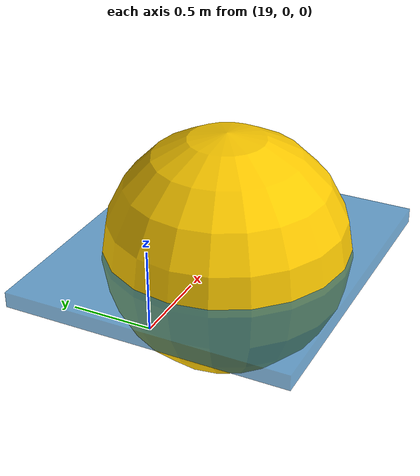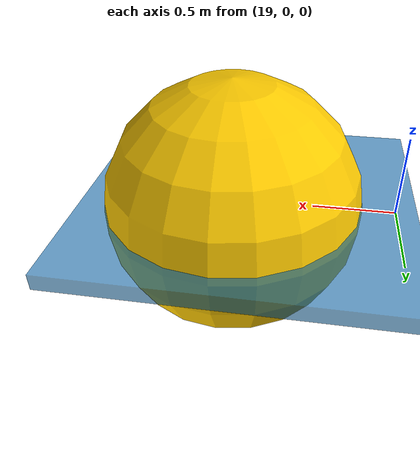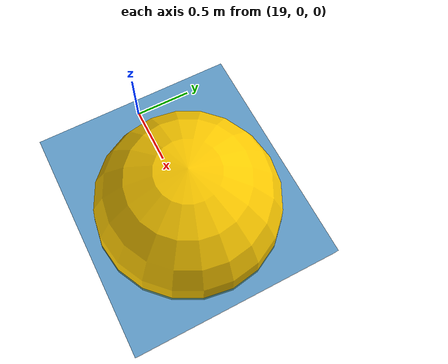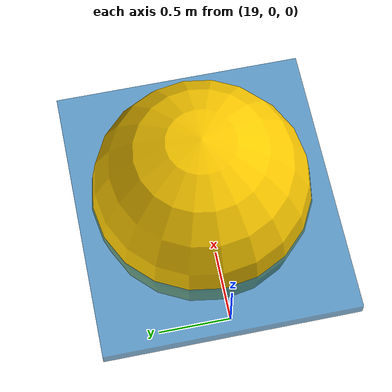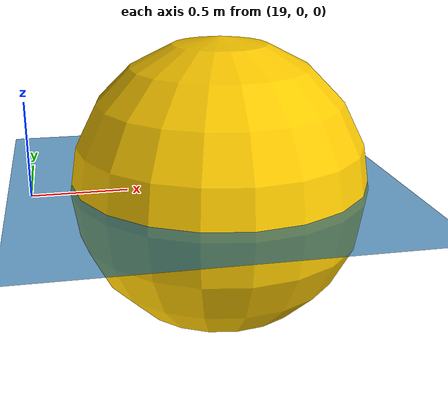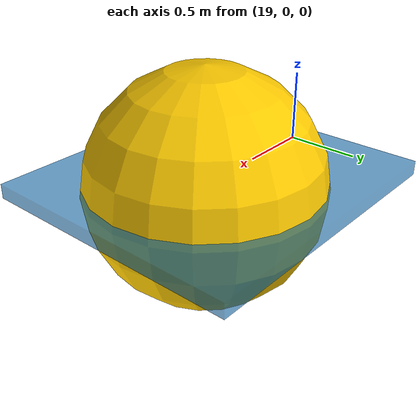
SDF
<?xml version="1.0" ?>
<sdf version="1.6">
  <world name="usv_world">
    <physics name="1ms" type="ignored">
      <max_step_size>0.001</max_step_size>
      <real_time_factor>1.0</real_time_factor>
    </physics>
    <plugin
      filename="ignition-gazebo-physics-system"
      name="ignition::gazebo::systems::Physics">
    </plugin>
    <plugin
      filename="ignition-gazebo-scene-broadcaster-system"
      name="ignition::gazebo::systems::SceneBroadcaster">
    </plugin>
    <plugin
      filename="ignition-gazebo-user-commands-system"
      name="ignition::gazebo::systems::UserCommands">
    </plugin>
    <plugin
      filename="ignition-gazebo-buoyancy-system"
      name="ignition::gazebo::systems::Buoyancy">
      <uniform_fluid_density>1000</uniform_fluid_density>
    </plugin>

    <scene>
      <ambient>0.4 0.4 0.4 1</ambient>
      <background>0.529 0.808 0.922 1</background>
    </scene>

    <light type="directional" name="sun">
      <cast_shadows>true</cast_shadows>
      <pose>0 0 10 0 0 0</pose>
      <diffuse>0.8 0.8 0.8 1</diffuse>
      <specular>0.5 0.5 0.5 1</specular>
    </light>

    <model name="water_surface">
      <static>true</static>
      <pose>0 0 0 0 0 0</pose>
      <link name="link">
        <visual name="visual">
          <geometry>
            <box>
              <size>500 500 0.1</size>
            </box>
          </geometry>
          <material>
            <ambient>0.0 0.4 0.7 0.6</ambient>
            <diffuse>0.0 0.4 0.7 0.6</diffuse>
            <specular>0.8 0.8 0.8 1</specular>
          </material>
        </visual>
      </link>
    </model>

    <model name="dock">
      <static>true</static>
      <pose>0 -10 0 0 0 0</pose>
      <link name="link">
        <collision name="collision">
          <geometry>
            <box>
              <size>10 5 1</size>
            </box>
          </geometry>
        </collision>
        <visual name="visual">
          <geometry>
            <box>
              <size>10 5 1</size>
            </box>
          </geometry>
          <material>
            <ambient>0.5 0.35 0.2 1</ambient>
            <diffuse>0.5 0.35 0.2 1</diffuse>
          </material>
        </visual>
      </link>
    </model>

    <model name="navigation_buoy">
      <static>true</static>
      <pose>20 0 0 0 0 0</pose>
      <link name="link">
        <visual name="visual">
          <geometry>
            <sphere>
              <radius>0.8</radius>
            </sphere>
          </geometry>
          <material>
            <ambient>1 0.8 0 1</ambient>
            <diffuse>1 0.8 0 1</diffuse>
          </material>
        </visual>
      </link>
    </model>
  </world>
</sdf>
